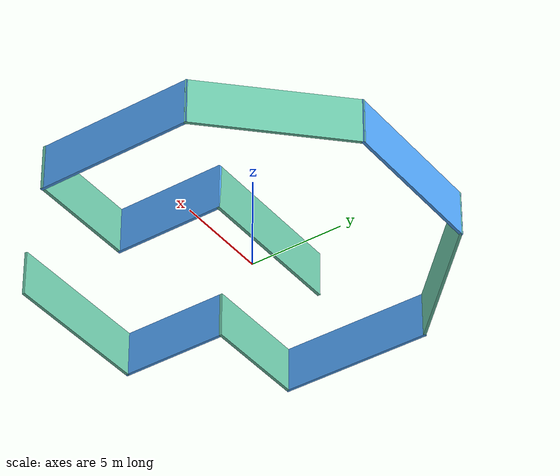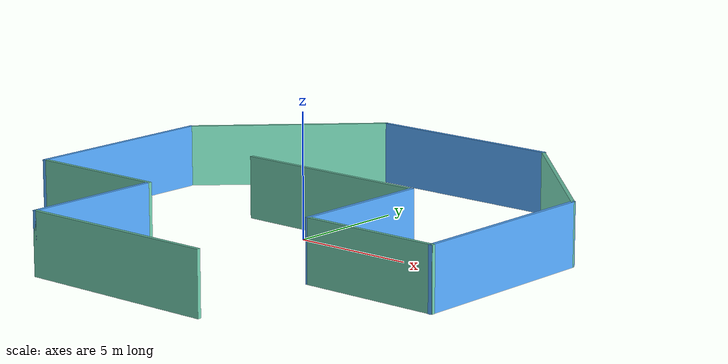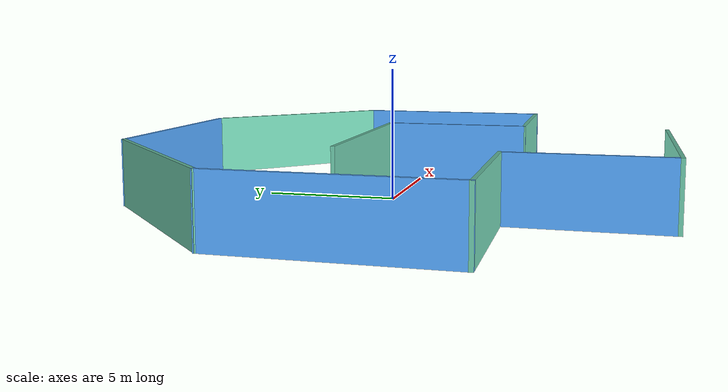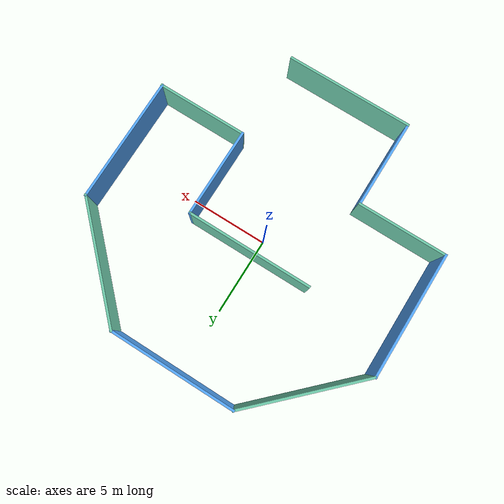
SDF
<?xml version='1.0'?>
<sdf version='1.6'>
  <model name='localize_room'>
    <pose frame=''>0.334195 -0.497504 0 0 -0 0</pose>
    <link name='Wall_15'>
      <collision name='Wall_15_Collision'>
        <geometry>
          <box>
            <size>8.284 0.15 2.5</size>
          </box>
        </geometry>
        <pose frame=''>0 0 1.25 0 -0 0</pose>
      </collision>
      <visual name='Wall_15_Visual'>
        <pose frame=''>0 0 1.25 0 -0 0</pose>
        <geometry>
          <box>
            <size>8.284 0.15 2.5</size>
          </box>
        </geometry>
        <material>
          <script>
            <uri>file://media/materials/scripts/gazebo.material</uri>
            <name>Gazebo/Grey</name>
          </script>
          <ambient>0.333333 0.666667 1 1</ambient>
        </material>
        <meta>
          <layer>0</layer>
        </meta>
      </visual>
      <pose frame=''>9.775 -0.015533 0 0 -0 1.5708</pose>
    </link>
    <link name='Wall_21'>
      <collision name='Wall_21_Collision'>
        <geometry>
          <box>
            <size>8.25 0.15 2.5</size>
          </box>
        </geometry>
        <pose frame=''>0 0 1.25 0 -0 0</pose>
      </collision>
      <visual name='Wall_21_Visual'>
        <pose frame=''>0 0 1.25 0 -0 0</pose>
        <geometry>
          <box>
            <size>8.25 0.15 2.5</size>
          </box>
        </geometry>
        <material>
          <script>
            <uri>file://media/materials/scripts/gazebo.material</uri>
            <name>Gazebo/Grey</name>
          </script>
          <ambient>0.333333 0.666667 1 1</ambient>
        </material>
        <meta>
          <layer>0</layer>
        </meta>
      </visual>
      <pose frame=''>-9.775 0.001467 0 0 -0 1.5708</pose>
    </link>
    <link name='Wall_27'>
      <collision name='Wall_27_Collision'>
        <geometry>
          <box>
            <size>8.284 0.15 2.5</size>
          </box>
        </geometry>
        <pose frame=''>0 0 1.25 0 -0 0</pose>
      </collision>
      <visual name='Wall_27_Visual'>
        <pose frame=''>0 0 1.25 0 -0 0</pose>
        <geometry>
          <box>
            <size>8.284 0.15 2.5</size>
          </box>
        </geometry>
        <material>
          <script>
            <uri>file://media/materials/scripts/gazebo.material</uri>
            <name>Gazebo/Grey</name>
          </script>
          <ambient>0.333333 0.666667 1 1</ambient>
        </material>
        <meta>
          <layer>0</layer>
        </meta>
      </visual>
      <pose frame=''>0 9.75947 0 0 -0 0</pose>
    </link>
    <link name='Wall_33'>
      <collision name='Wall_33_Collision'>
        <geometry>
          <box>
            <size>8.22233 0.15 2.5</size>
          </box>
        </geometry>
        <pose frame=''>0 0 1.25 0 -0 0</pose>
      </collision>
      <visual name='Wall_33_Visual'>
        <pose frame=''>0 0 1.25 0 -0 0</pose>
        <geometry>
          <box>
            <size>8.22233 0.15 2.5</size>
          </box>
        </geometry>
        <material>
          <script>
            <uri>file://media/materials/scripts/gazebo.material</uri>
            <name>Gazebo/Grey</name>
          </script>
          <ambient>0.435294 0.796078 0.67451 1</ambient>
        </material>
        <meta>
          <layer>0</layer>
        </meta>
      </visual>
      <pose frame=''>-6.921 6.90547 0 0 0 -2.35619</pose>
    </link>
    <link name='Wall_35'>
      <collision name='Wall_35_Collision'>
        <geometry>
          <box>
            <size>8.22233 0.15 2.5</size>
          </box>
        </geometry>
        <pose frame=''>0 0 1.25 0 -0 0</pose>
      </collision>
      <visual name='Wall_35_Visual'>
        <pose frame=''>0 0 1.25 0 -0 0</pose>
        <geometry>
          <box>
            <size>8.22233 0.15 2.5</size>
          </box>
        </geometry>
        <material>
          <script>
            <uri>file://media/materials/scripts/gazebo.material</uri>
            <name>Gazebo/Grey</name>
          </script>
          <ambient>0.435294 0.796078 0.67451 1</ambient>
        </material>
        <meta>
          <layer>0</layer>
        </meta>
      </visual>
      <pose frame=''>6.921 6.90547 0 0 0 -0.785398</pose>
    </link>
    <link name='Wall_4'>
      <collision name='Wall_4_Collision'>
        <geometry>
          <box>
            <size>8.284 0.15 2.5</size>
          </box>
        </geometry>
        <pose frame=''>0 0 1.25 0 -0 0</pose>
      </collision>
      <visual name='Wall_4_Visual'>
        <pose frame=''>0 0 1.25 0 -0 0</pose>
        <geometry>
          <box>
            <size>8.284 0.15 2.5</size>
          </box>
        </geometry>
        <material>
          <script>
            <uri>file://media/materials/scripts/gazebo.material</uri>
            <name>Gazebo/Grey</name>
          </script>
          <ambient>0.435294 0.796078 0.67451 1</ambient>
        </material>
        <meta>
          <layer>0</layer>
        </meta>
      </visual>
      <pose frame=''>0 -9.79053 0 0 -0 0</pose>
    </link>
    <link name='Wall_56'>
      <collision name='Wall_56_Collision'>
        <geometry>
          <box>
            <size>5.858 0.15 2.5</size>
          </box>
        </geometry>
        <pose frame=''>0 0 1.25 0 -0 0</pose>
      </collision>
      <visual name='Wall_56_Visual'>
        <pose frame=''>0 0 1.25 0 -0 0</pose>
        <geometry>
          <box>
            <size>5.858 0.15 2.5</size>
          </box>
        </geometry>
        <material>
          <script>
            <uri>file://media/materials/scripts/gazebo.material</uri>
            <name>Gazebo/Grey</name>
          </script>
          <ambient>0.435294 0.796078 0.67451 1</ambient>
        </material>
        <meta>
          <layer>0</layer>
        </meta>
      </visual>
      <pose frame=''>-6.921 -4.04853 0 0 -0 0</pose>
    </link>
    <link name='Wall_58'>
      <collision name='Wall_58_Collision'>
        <geometry>
          <box>
            <size>5.75 0.15 2.5</size>
          </box>
        </geometry>
        <pose frame=''>0 0 1.25 0 -0 0</pose>
      </collision>
      <visual name='Wall_58_Visual'>
        <pose frame=''>0 0 1.25 0 -0 0</pose>
        <geometry>
          <box>
            <size>5.75 0.15 2.5</size>
          </box>
        </geometry>
        <material>
          <script>
            <uri>file://media/materials/scripts/gazebo.material</uri>
            <name>Gazebo/Grey</name>
          </script>
          <ambient>0.333333 0.666667 1 1</ambient>
        </material>
        <meta>
          <layer>0</layer>
        </meta>
      </visual>
      <pose frame=''>-4.067 -6.99053 0 0 -0 1.5708</pose>
    </link>
    <link name='Wall_60'>
      <collision name='Wall_60_Collision'>
        <geometry>
          <box>
            <size>5.90863 0.15 2.5</size>
          </box>
        </geometry>
        <pose frame=''>0 0 1.25 0 -0 0</pose>
      </collision>
      <visual name='Wall_60_Visual'>
        <pose frame=''>0 0 1.25 0 -0 0</pose>
        <geometry>
          <box>
            <size>5.90863 0.15 2.5</size>
          </box>
        </geometry>
        <material>
          <script>
            <uri>file://media/materials/scripts/gazebo.material</uri>
            <name>Gazebo/Grey</name>
          </script>
          <ambient>0.435294 0.796078 0.67451 1</ambient>
        </material>
        <meta>
          <layer>0</layer>
        </meta>
      </visual>
      <pose frame=''>6.91525 -4.06048 0 0 0 -0.000864</pose>
    </link>
    <link name='Wall_63'>
      <collision name='Wall_63_Collision'>
        <geometry>
          <box>
            <size>8.25 0.15 2.5</size>
          </box>
        </geometry>
        <pose frame=''>0 0 1.25 0 -0 0</pose>
      </collision>
      <visual name='Wall_63_Visual'>
        <pose frame=''>0 0 1.25 0 -0 0</pose>
        <geometry>
          <box>
            <size>8.25 0.15 2.5</size>
          </box>
        </geometry>
        <material>
          <script>
            <uri>file://media/materials/scripts/gazebo.material</uri>
            <name>Gazebo/Grey</name>
          </script>
          <ambient>0.435294 0.796078 0.67451 1</ambient>
        </material>
        <meta>
          <layer>0</layer>
        </meta>
      </visual>
      <pose frame=''>-0.014065 1.69201 0 0 -0 0</pose>
    </link>
    <link name='Wall_64'>
      <collision name='Wall_64_Collision'>
        <geometry>
          <box>
            <size>5.9 0.15 2.5</size>
          </box>
        </geometry>
        <pose frame=''>0 0 1.25 0 -0 0</pose>
      </collision>
      <visual name='Wall_64_Visual'>
        <pose frame=''>0 0 1.25 0 -0 0</pose>
        <geometry>
          <box>
            <size>5.9 0.15 2.5</size>
          </box>
        </geometry>
        <material>
          <script>
            <uri>file://media/materials/scripts/gazebo.material</uri>
            <name>Gazebo/Grey</name>
          </script>
          <ambient>0.333333 0.666667 1 1</ambient>
        </material>
        <meta>
          <layer>0</layer>
        </meta>
      </visual>
      <pose frame=''>4.03594 -1.18299 0 0 0 -1.5708</pose>
    </link>
    <static>1</static>
  </model>
</sdf>
